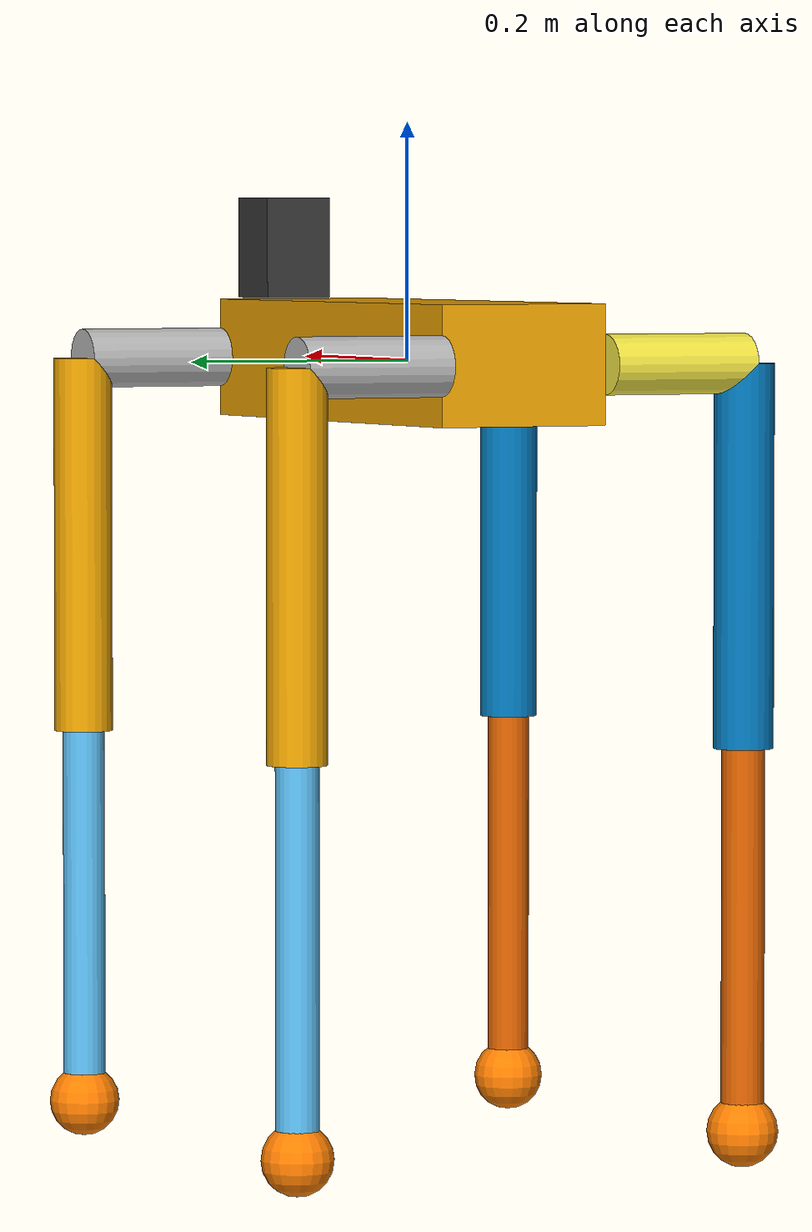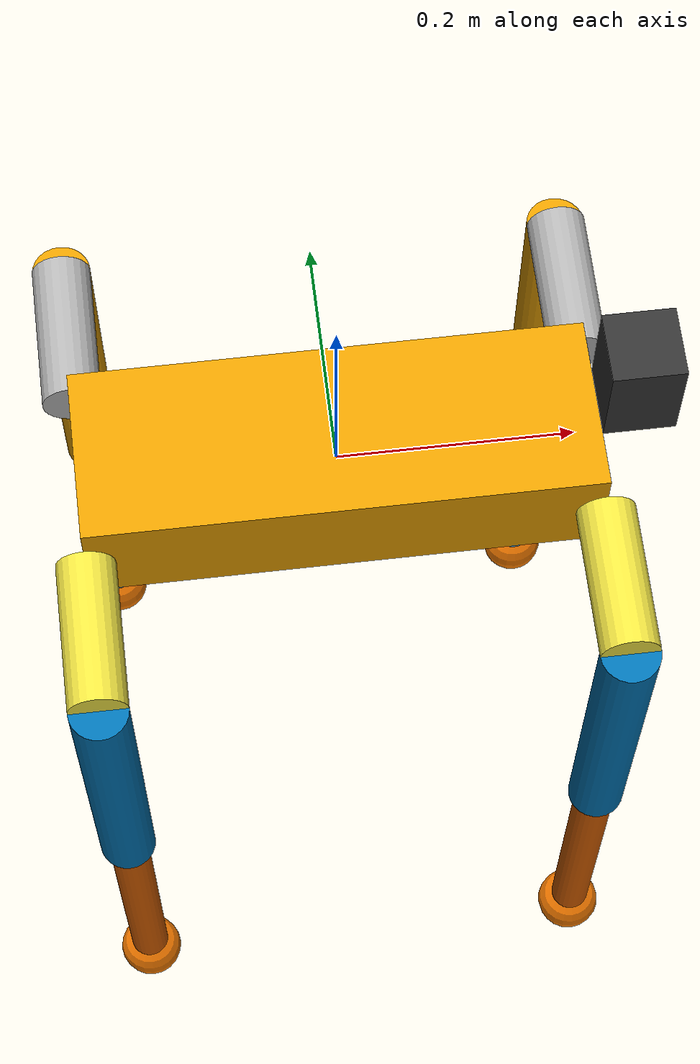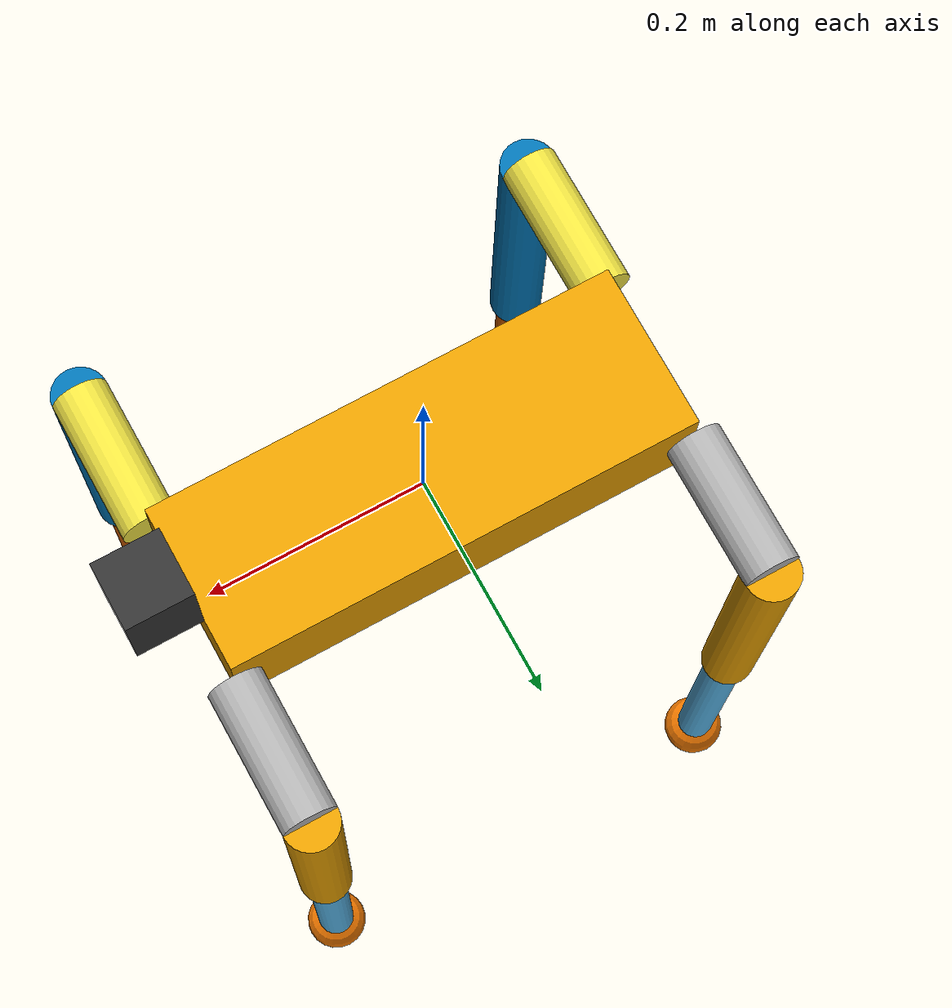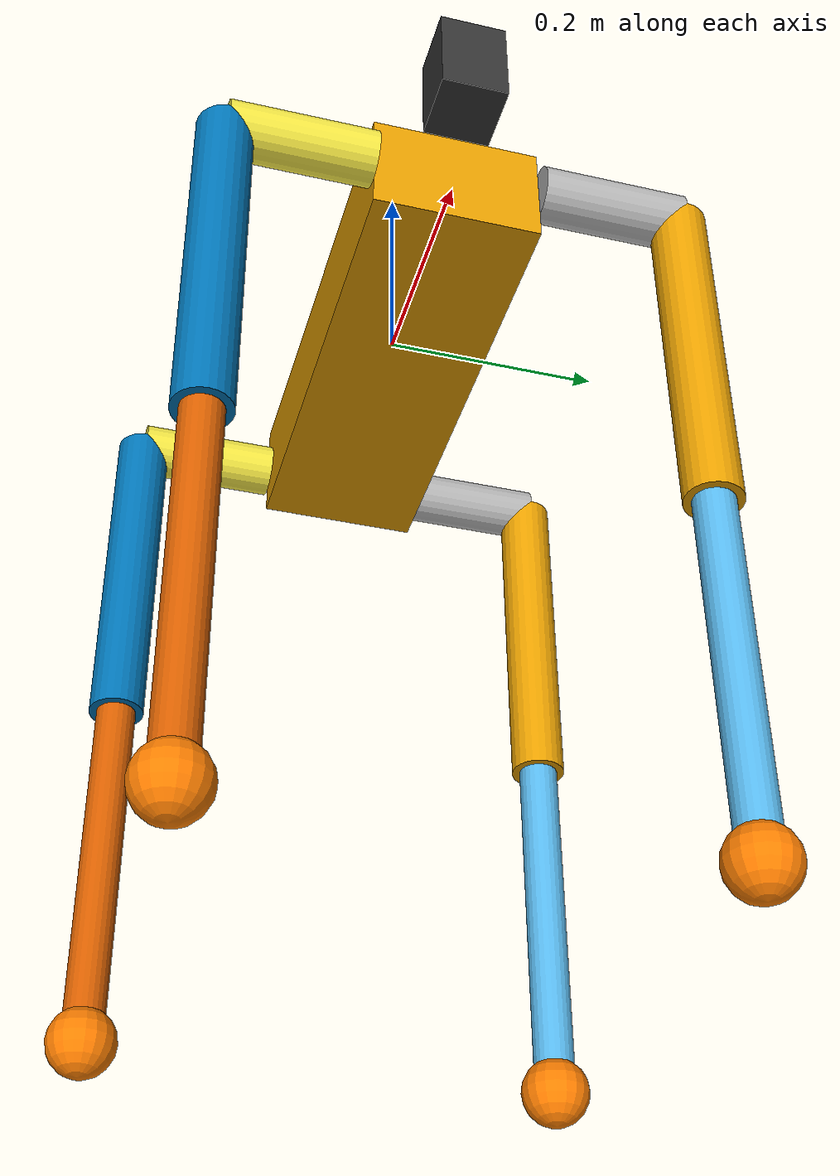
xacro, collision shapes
<?xml version="1.0"?>
<robot name="dog" xmlns:xacro="http://www.ros.org/wiki/xacro">

  <!-- ═══════════════════════════════════════════════════════════════
       Parameters
  ═══════════════════════════════════════════════════════════════ -->
  <xacro:property name="body_l"     value="0.430"/>
  <xacro:property name="body_w"     value="0.150"/>
  <xacro:property name="body_h"     value="0.100"/>
  <xacro:property name="body_mass"  value="4.0"/>

  <xacro:property name="hip_offset" value="0.130"/>
  <xacro:property name="upper_len"  value="0.320"/>
  <xacro:property name="lower_len"  value="0.320"/>
  <xacro:property name="foot_r"     value="0.030"/>

  <xacro:property name="hip_mass"   value="0.300"/>
  <xacro:property name="upper_mass" value="0.500"/>
  <xacro:property name="lower_mass" value="0.300"/>
  <xacro:property name="foot_mass"  value="0.050"/>

  <xacro:property name="body_ms"  value="1.56 0.76 1.01"/>
  <xacro:property name="abad_ms"  value="2.10 2.10 2.10"/>
  <xacro:property name="upper_ms" value="1.53 1.53 1.53"/>
  <xacro:property name="lower_ms" value="1.78 1.78 1.78"/>

  <!-- ═══════════════════════════════════════════════════════════════
       Materials
  ═══════════════════════════════════════════════════════════════ -->
  <material name="dark_grey">  <color rgba="0.20 0.20 0.20 1.0"/> </material>
  <material name="light_grey"> <color rgba="0.70 0.70 0.70 1.0"/> </material>
  <material name="orange">     <color rgba="1.00 0.50 0.00 1.0"/> </material>

  <!-- ═══════════════════════════════════════════════════════════════
       Base (torso)
  ═══════════════════════════════════════════════════════════════ -->
  <link name="base_link">
    <inertial>
      <origin xyz="0 0 0" rpy="0 0 0"/>
      <mass value="${body_mass}"/>
      <!-- ixx=(m/12)*(w²+h²), iyy=(m/12)*(l²+h²), izz=(m/12)*(l²+w²) -->
      <inertia ixx="0.0108" ixy="0" ixz="0"
               iyy="0.0650" iyz="0"
               izz="0.0691"/>
    </inertial>
    <visual>
      <origin xyz="0 0 0" rpy="0 0 0"/>
      <geometry>
        <mesh filename="file://$(find dog)/urdf/meshes/body.dae" scale="${body_ms}"/>
      </geometry>
    </visual>
    <collision>
      <origin xyz="0 0 0" rpy="0 0 0"/>
      <geometry><box size="${body_l} ${body_w} ${body_h}"/></geometry>
    </collision>
  </link>

  <!-- IMU frame -->
  <link name="imu_link"/>
  <joint name="imu_joint" type="fixed">
    <parent link="base_link"/>
    <child  link="imu_link"/>
    <origin xyz="0 0 0" rpy="0 0 0"/>
  </joint>

  <link name="lidar_link">
    <inertial>
      <origin xyz="0 0 0" rpy="0 0 0"/>
      <mass value="0.370"/>
      <inertia ixx="3.4e-4" ixy="0" ixz="0"
               iyy="3.4e-4" iyz="0"
               izz="2.2e-4"/>
    </inertial>
    <visual>
      <origin xyz="0 0 0" rpy="0 0 0"/>
      <geometry><box size="0.060 0.060 0.087"/></geometry>
      <material name="dark_grey"/>
    </visual>
    <collision>
      <origin xyz="0 0 0" rpy="0 0 0"/>
      <geometry><box size="0.060 0.060 0.087"/></geometry>
    </collision>
  </link>

  <joint name="lidar_joint" type="fixed">
    <parent link="base_link"/>
    <child  link="lidar_link"/>
    <origin xyz="${body_l/2 + 0.030} 0 ${body_h/2 + 0.044}" rpy="0 0 0"/>
  </joint>

  <gazebo reference="lidar_link">
    <sensor name="hokuyo_lidar" type="lidar">
      <always_on>1</always_on>
      <update_rate>10</update_rate>
      <topic>/scan</topic>
      <gz_frame_id>lidar_link</gz_frame_id>
      <lidar>
        <scan>
          <horizontal>
            <samples>360</samples>
            <resolution>1</resolution>
            <min_angle>-2.356</min_angle>
            <max_angle>2.356</max_angle>
          </horizontal>
        </scan>
        <range>
          <min>0.10</min>
          <max>30.0</max>
          <resolution>0.01</resolution>
        </range>
        <noise>
          <type>gaussian</type>
          <mean>0.0</mean>
          <stddev>0.01</stddev>
        </noise>
      </lidar>
    </sensor>
  </gazebo>

  <xacro:macro name="leg" params="name bx by hip_dir sk_axis abad_rpy abad_vx_s">

    <!-- Hip joint: abduction/adduction, axis = +x -->
    <joint name="${name}_hip_joint" type="revolute">
      <parent link="base_link"/>
      <child  link="${name}_hip_link"/>
      <origin xyz="${bx} ${by} 0" rpy="0 0 0"/>
      <axis xyz="1 0 0"/>
      <limit lower="-0.785" upper="0.785" effort="18.0" velocity="45.0"/>
      <dynamics damping="0.1" friction="0.0"/>
    </joint>

    <link name="${name}_hip_link">
      <inertial>
        <origin xyz="0 ${hip_dir * hip_offset * 0.5} 0" rpy="0 0 0"/>
        <mass value="${hip_mass}"/>
        <!-- cylinder along y: ixx=izz=(m/12)*(3r²+l²), iyy=(m/2)*r² -->
        <inertia ixx="4.7e-4" ixy="0" ixz="0"
                 iyy="9.4e-5" iyz="0"
                 izz="4.7e-4"/>
      </inertial>
      <visual>
        <origin xyz="${abad_vx_s} 0 0" rpy="${abad_rpy}"/>
        <geometry>
          <mesh filename="file://$(find dog)/urdf/meshes/abad.dae" scale="${abad_ms}"/>
        </geometry>
      </visual>
      <collision>
        <origin xyz="0 ${hip_dir * hip_offset * 0.5} 0" rpy="${pi/2} 0 0"/>
        <geometry><cylinder radius="0.025" length="${hip_offset}"/></geometry>
      </collision>
    </link>

    <!-- Shoulder joint: thigh flexion -->
    <joint name="${name}_shoulder_joint" type="revolute">
      <parent link="${name}_hip_link"/>
      <child  link="${name}_upper_leg_link"/>
      <origin xyz="0 ${hip_dir * hip_offset} 0" rpy="0 0 0"/>
      <axis xyz="${sk_axis}"/>
      <limit lower="-2.618" upper="2.618" effort="50.0" velocity="45.0"/>
      <dynamics damping="0.1" friction="0.0"/>
    </joint>

    <link name="${name}_upper_leg_link">
      <inertial>
        <origin xyz="0 0 ${-upper_len * 0.5}" rpy="0 0 0"/>
        <mass value="${upper_mass}"/>
        <!-- cylinder along z: ixx=iyy=(m/12)*(3r²+l²), izz=(m/2)*r² -->
        <inertia ixx="4.34e-3" ixy="0" ixz="0"
                 iyy="4.34e-3" iyz="0"
                 izz="1.56e-4"/>
      </inertial>
      <visual>
        <origin xyz="0 0 0" rpy="0 -1.5708 0"/>
        <geometry>
          <mesh filename="file://$(find dog)/urdf/meshes/upper_link.dae" scale="${upper_ms}"/>
        </geometry>
      </visual>
      <collision>
        <origin xyz="0 0 ${-upper_len * 0.5}" rpy="0 0 0"/>
        <geometry><cylinder radius="0.025" length="${upper_len}"/></geometry>
      </collision>
    </link>

    <!-- Knee joint: shank flexion -->
    <joint name="${name}_knee_joint" type="revolute">
      <parent link="${name}_upper_leg_link"/>
      <child  link="${name}_lower_leg_link"/>
      <origin xyz="0 0 ${-upper_len}" rpy="0 0 0"/>
      <axis xyz="${sk_axis}"/>
      <limit lower="-2.618" effort="50.0" upper="2.618" velocity="45.0"/>
      <dynamics damping="0.1" friction="0.0"/>
    </joint>

    <link name="${name}_lower_leg_link">
      <inertial>
        <origin xyz="0 0 ${-lower_len * 0.5}" rpy="0 0 0"/>
        <mass value="${lower_mass}"/>
        <!-- cylinder along z: ixx=iyy=(m/12)*(3r²+l²), izz=(m/2)*r² -->
        <inertia ixx="2.58e-3" ixy="0" ixz="0"
                 iyy="2.58e-3" iyz="0"
                 izz="3.4e-5"/>
      </inertial>
      <visual>
        <origin xyz="0 0 0" rpy="0 3.141592 0"/>
        <geometry>
          <mesh filename="file://$(find dog)/urdf/meshes/lower_link.dae" scale="${lower_ms}"/>
        </geometry>
      </visual>
      <collision>
        <origin xyz="0 0 ${-lower_len * 0.5}" rpy="0 0 0"/>
        <geometry><cylinder radius="0.018" length="${lower_len}"/></geometry>
      </collision>
    </link>

    <!-- Foot sphere (contact) -->
    <joint name="${name}_foot_joint" type="fixed">
      <parent link="${name}_lower_leg_link"/>
      <child  link="${name}_foot_link"/>
      <origin xyz="0 0 ${-lower_len}" rpy="0 0 0"/>
    </joint>

    <link name="${name}_foot_link">
      <inertial>
        <mass value="${foot_mass}"/>
        <!-- sphere: ixx=iyy=izz=(2/5)*m*r² -->
        <inertia ixx="1.8e-5" ixy="0" ixz="0"
                 iyy="1.8e-5" iyz="0"
                 izz="1.8e-5"/>
      </inertial>
      <visual>
        <geometry><sphere radius="${foot_r}"/></geometry>
        <material name="orange"/>
      </visual>
      <collision>
        <geometry><sphere radius="${foot_r}"/></geometry>
      </collision>
    </link>

    <!-- Gazebo contact / friction params for this foot -->
    <gazebo reference="${name}_foot_link">
      <mu1>1.2</mu1>
      <mu2>1.2</mu2>
      <kp>500000.0</kp>
      <kd>10.0</kd>
      <minDepth>0.001</minDepth>
    </gazebo>

  </xacro:macro>

  <xacro:leg name="fr" bx=" 0.215" by="-0.075" hip_dir="-1" sk_axis="0 1 0"
             abad_rpy="3.141592 0 1.5708"  abad_vx_s="-0.115"/>
  <xacro:leg name="fl" bx=" 0.215" by=" 0.075" hip_dir=" 1" sk_axis="0 1 0"
             abad_rpy="0 0 -1.5708"        abad_vx_s="-0.115"/>
  <xacro:leg name="rr" bx="-0.215" by="-0.075" hip_dir="-1" sk_axis="0 1 0"
             abad_rpy="0 0 1.5708"         abad_vx_s=" 0.115"/>
  <xacro:leg name="rl" bx="-0.215" by=" 0.075" hip_dir=" 1" sk_axis="0 1 0"
             abad_rpy="3.141592 0 -1.5708" abad_vx_s=" 0.115"/>

  <ros2_control name="GazeboSimSystem" type="system">
    <hardware>
      <plugin>ign_ros2_control/IgnitionSystem</plugin>
    </hardware>

    <!-- FR  (sk_axis="0 1 0": signs match motor commands directly) -->
    <joint name="fr_hip_joint">
      <command_interface name="position"/>
      <state_interface name="position"><param name="initial_value"> 0.27</param></state_interface>
      <state_interface name="velocity"/>
    </joint>
    <joint name="fr_shoulder_joint">
      <command_interface name="position"/>
      <state_interface name="position"><param name="initial_value"> 0.57</param></state_interface>
      <state_interface name="velocity"/>
    </joint>
    <joint name="fr_knee_joint">
      <command_interface name="position"/>
      <state_interface name="position"><param name="initial_value">-1.13</param></state_interface>
      <state_interface name="velocity"/>
    </joint>

    <!-- FL  (sk_axis="0 1 0": shoulder/knee signs match motor cmd) -->
    <joint name="fl_hip_joint">
      <command_interface name="position"/>
      <state_interface name="position"><param name="initial_value">-0.27</param></state_interface>
      <state_interface name="velocity"/>
    </joint>
    <joint name="fl_shoulder_joint">
      <command_interface name="position"/>
      <state_interface name="position"><param name="initial_value"> 0.57</param></state_interface>
      <state_interface name="velocity"/>
    </joint>
    <joint name="fl_knee_joint">
      <command_interface name="position"/>
      <state_interface name="position"><param name="initial_value">-1.13</param></state_interface>
      <state_interface name="velocity"/>
    </joint>

    <!-- RR  (sk_axis="0 1 0") -->
    <joint name="rr_hip_joint">
      <command_interface name="position"/>
      <state_interface name="position"><param name="initial_value"> 0.27</param></state_interface>
      <state_interface name="velocity"/>
    </joint>
    <joint name="rr_shoulder_joint">
      <command_interface name="position"/>
      <state_interface name="position"><param name="initial_value"> 0.57</param></state_interface>
      <state_interface name="velocity"/>
    </joint>
    <joint name="rr_knee_joint">
      <command_interface name="position"/>
      <state_interface name="position"><param name="initial_value">-1.13</param></state_interface>
      <state_interface name="velocity"/>
    </joint>

    <!-- RL  (sk_axis="0 1 0") -->
    <joint name="rl_hip_joint">
      <command_interface name="position"/>
      <state_interface name="position"><param name="initial_value">-0.27</param></state_interface>
      <state_interface name="velocity"/>
    </joint>
    <joint name="rl_shoulder_joint">
      <command_interface name="position"/>
      <state_interface name="position"><param name="initial_value"> 0.57</param></state_interface>
      <state_interface name="velocity"/>
    </joint>
    <joint name="rl_knee_joint">
      <command_interface name="position"/>
      <state_interface name="position"><param name="initial_value">-1.13</param></state_interface>
      <state_interface name="velocity"/>
    </joint>

  </ros2_control>

  <!-- ═══════════════════════════════════════════════════════════════
       Gazebo plugins
  ═══════════════════════════════════════════════════════════════ -->

  <!-- ign_ros2_control: starts controller_manager inside Gazebo -->
  <gazebo>
    <plugin filename="ign_ros2_control-system"
            name="gz_ros2_control::GazeboSimROS2ControlPlugin">
      <parameters>$(find dog)/config/ros2_controllers.yaml</parameters>
      <ros>
        <namespace>/</namespace>
      </ros>
    </plugin>
  </gazebo>

  <gazebo>
    <plugin filename="ignition-gazebo-odometry-publisher-system"
            name="ignition::gazebo::systems::OdometryPublisher">
      <odom_frame>odom</odom_frame>
      <robot_base_frame>base_link</robot_base_frame>
      <odom_publish_frequency>50</odom_publish_frequency>
      <dimensions>2</dimensions>
    </plugin>
  </gazebo>

  <!-- IMU sensor: publishes sensor_msgs/Imu via ros_gz_bridge to /imu/data -->
  <gazebo reference="imu_link">
    <sensor name="imu_sensor" type="imu">
      <always_on>1</always_on>
      <update_rate>50</update_rate>
      <topic>/imu/data</topic>
      <gz_frame_id>imu_link</gz_frame_id>
      <imu>
        <angular_velocity>
          <x><noise type="gaussian"><mean>0.0</mean><stddev>2e-4</stddev></noise></x>
          <y><noise type="gaussian"><mean>0.0</mean><stddev>2e-4</stddev></noise></y>
          <z><noise type="gaussian"><mean>0.0</mean><stddev>2e-4</stddev></noise></z>
        </angular_velocity>
        <linear_acceleration>
          <x><noise type="gaussian"><mean>0.0</mean><stddev>0.017</stddev></noise></x>
          <y><noise type="gaussian"><mean>0.0</mean><stddev>0.017</stddev></noise></y>
          <z><noise type="gaussian"><mean>0.0</mean><stddev>0.017</stddev></noise></z>
        </linear_acceleration>
      </imu>
    </sensor>
  </gazebo>

</robot>
